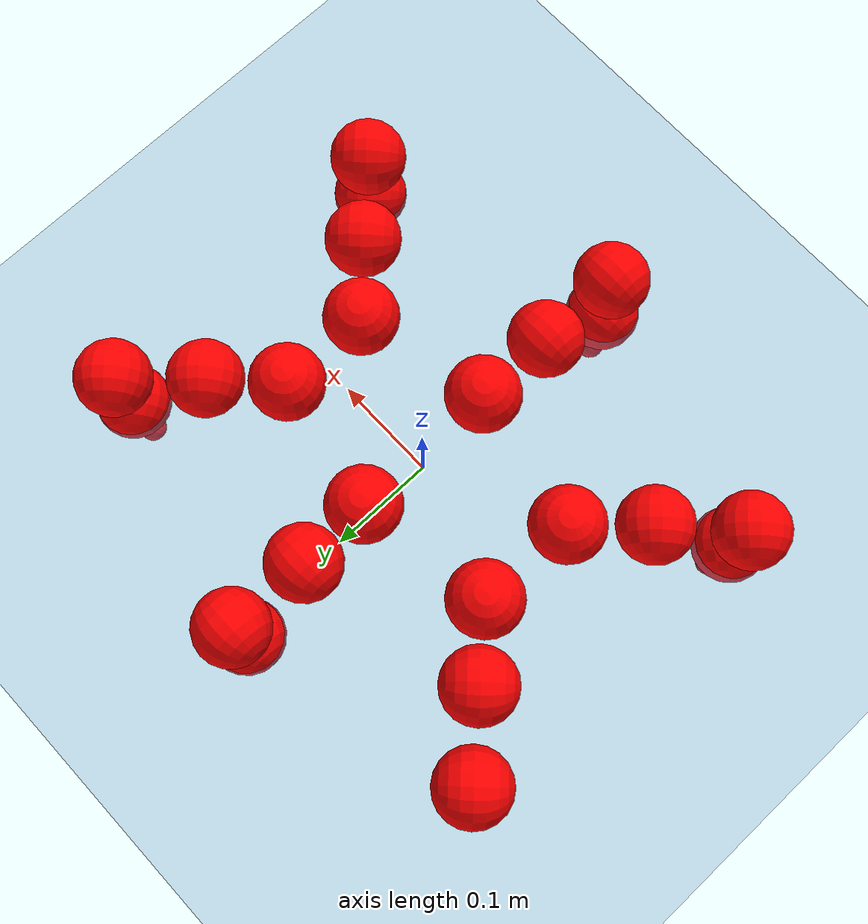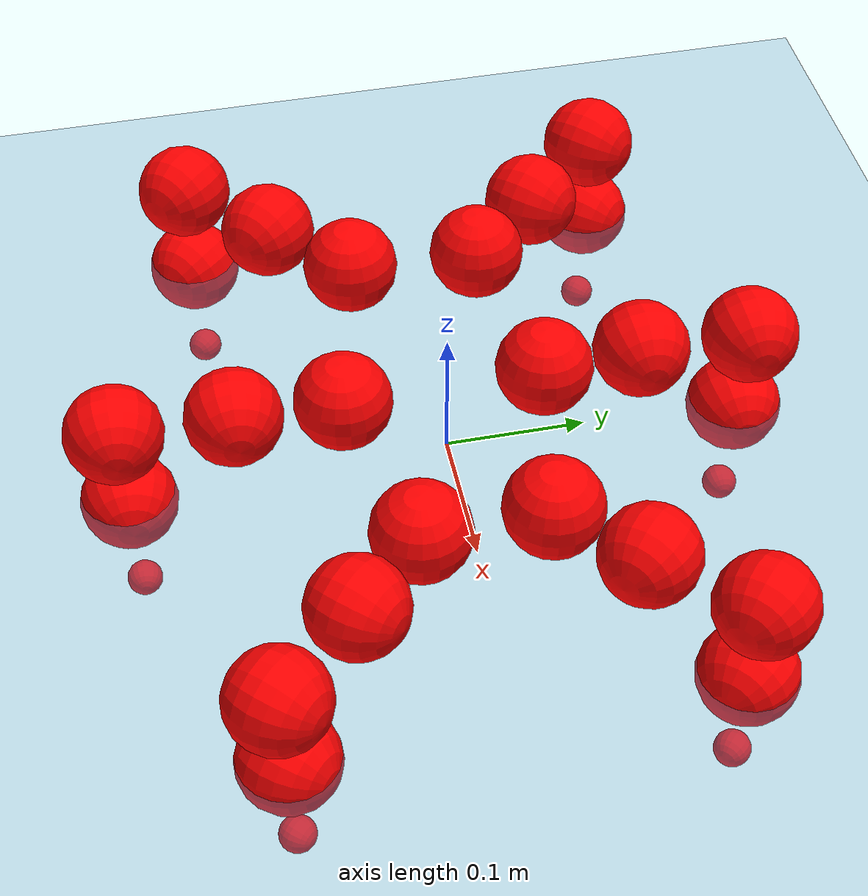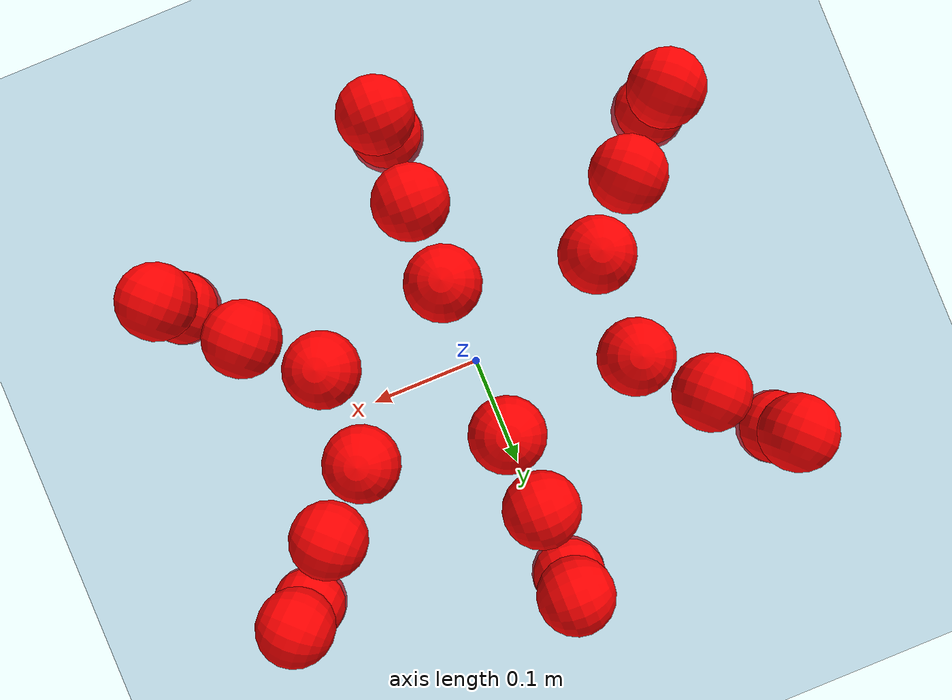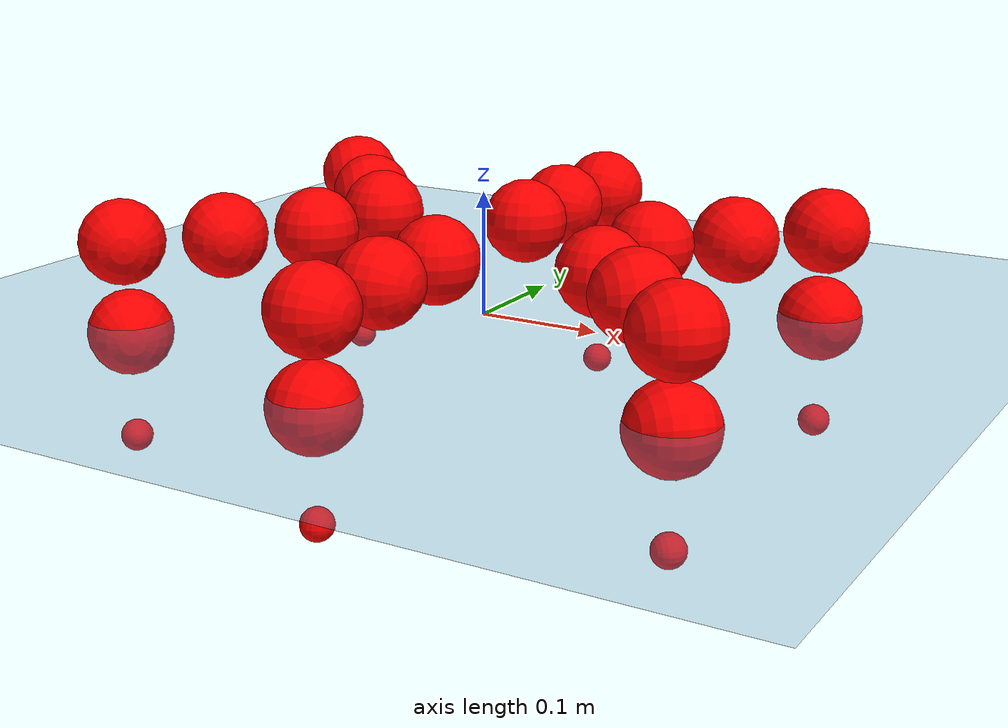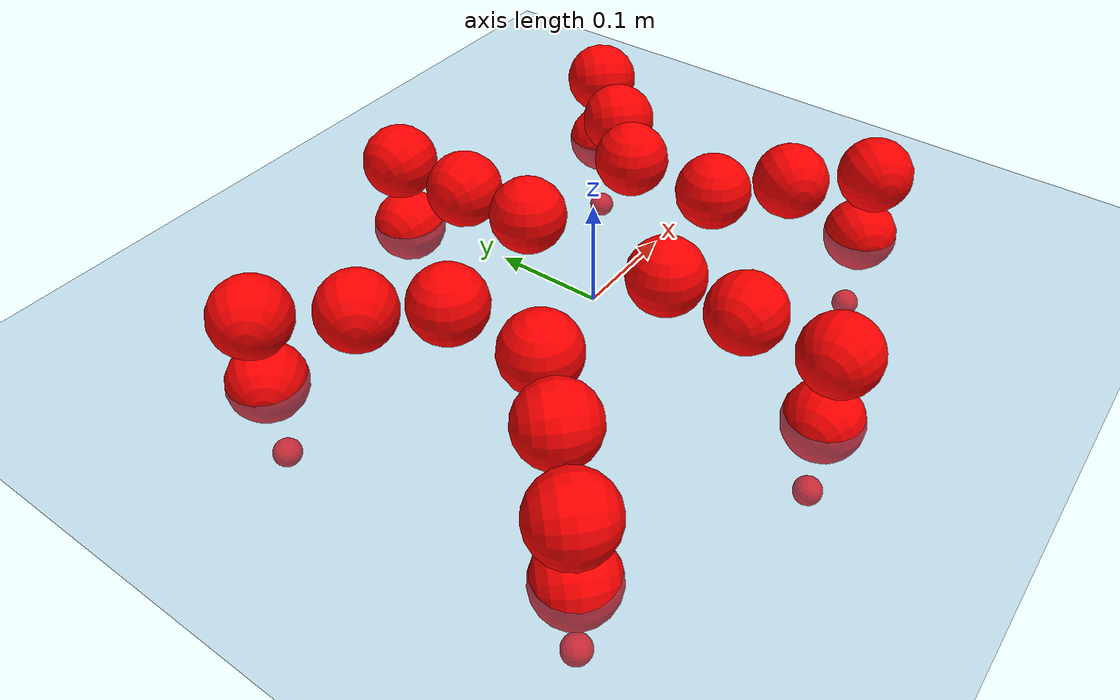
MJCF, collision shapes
<mujoco model="Golem">
  <compiler angle="radian" assetdir="assets" balanceinertia="true" inertiafromgeom="false"/>

  <option timestep="0.005" density="1.2" viscosity="2e-05"/>

  <size nkey="1"/>

  <visual>
    <quality shadowsize="8192"/>
    <map shadowclip="0.5"/>
  </visual>

  <default>
    <default class="/">
      <joint armature="0.01" damping="0.01" frictionloss="0.01"/>
      <geom contype="0" conaffinity="0" group="1" solref="-1000 -80"/>
      <site size="0.01 0.005 0.005" group="5"/>
      <general forcelimited="true" biastype="affine" gainprm="25" biasprm="0 -25 -0.5"/>
      <default class="visual">
        <geom type="mesh" group="2"/>
      </default>
      <default class="collision">
        <geom group="3"/>
      </default>
      <default class="foot">
        <geom size="0.01 0 0" condim="6" group="4" priority="1" solimp="0.015 1 0.01"/>
      </default>
      <default class="reward_collision_sphere">
        <geom group="5" rgba="1 0 0 1"/>
      </default>
    </default>
  </default>

  <asset>
    <texture type="skybox" colorspace="auto" name="//unnamed_texture_0" builtin="gradient" rgb1="0.95 0.95 0.95" rgb2="0.95 0.95 0.95" width="100" height="600"/>
    <texture type="2d" colorspace="auto" name="texplane" builtin="checker" rgb1="0.345 0.575 0.748" rgb2="0.345 0.575 0.748" markrgb="1 1 1" width="512" height="512"/>
    <material name="MatPlane" class="/" texture="texplane" texuniform="true" texrepeat="2 2" specular="0.9"/>
    <mesh name="body" class="/" file="body.stl" scale="0.001 0.001 0.001"/>
    <mesh name="coxa" class="/" file="coxa.stl" scale="0.001 0.001 0.001"/>
    <mesh name="femur" class="/" file="femur.stl" scale="0.001 0.001 0.001"/>
    <mesh name="tibia" class="/" file="tibia.stl" scale="0.001 0.001 0.001"/>
    <mesh name="tarsus" class="/" file="tarsus.stl" scale="0.001 0.001 0.001"/>
  </asset>

  <worldbody>
    <geom name="floor" class="/" size="100 100 0.125" type="plane" group="0" material="MatPlane"/>
    <light name="toplight_shadow" class="/" pos="0 0 5" dir="0.0990148 0.0990148 -0.990148" type="directional" ambient="0.04 0.04 0.04" diffuse="0.55 0.55 0.55" specular="0.12 0.12 0.12"/>
    <light name="toplight_fill" class="/" pos="0 0 5" dir="0.0990148 0.0990148 -0.990148" type="directional" castshadow="false" ambient="0.04 0.04 0.04" diffuse="0.3 0.3 0.3" specular="0.08 0.08 0.08"/>
    <body name="trunk" pos="-0.0010038 -8.7286e-05 -0.0026835" quat="1 0.00071058 0.000146361 -6.19116e-05">
      <inertial pos="0.000515286 0.00233504 -0.00512933" quat="0.999987 -0.00475983 -0.00162078 0.00105217" mass="2.3874" diaginertia="0.00365906 0.00221439 0.011383"/>
      <joint name="//unnamed_joint_0" type="free"/>
      <geom name="//unnamed_geom_1" class="/" pos="0 0 0.0652851" quat="1 0 0 0" type="mesh" rgba="0.9 0.9 0.9 1" mesh="body"/>
      <site name="imu" class="/" pos="0.0992144 -0.000275376 0.11593" size="0.00857022"/>
      <camera name="track" class="/" pos="0 -1.47671 0" quat="0.707107 0.707107 0 0" mode="trackcom"/>
      <camera name="ego_camera" class="/" pos="0.105642 0 0.102008" quat="-0.5 -0.5 0.5 0.5"/>
      <body name="coxa_RR" pos="-0.146849 -0.0616831 0.0654799" quat="0.383388 -0.000801969 0.000112649 -0.923587">
        <inertial pos="-0.00259113 -0.00213741 -0.000621152" quat="0.999903 0.00981018 -0.00944155 -0.00289718" mass="0.126994" diaginertia="0.00352164 0.00216075 0.0106686"/>
        <joint name="coxa_joint_RR" class="/" pos="0 0 0" axis="0.00726515 -0.00331226 -0.999968" range="-3.168 3.11873" armature="0.0085569" damping="0.015612" frictionloss="0.00976261"/>
        <geom name="//unnamed_geom_2" class="/" type="mesh" rgba="0.2 0.2 0.2 1" mesh="coxa"/>
        <geom name="//unnamed_geom_3" class="reward_collision_sphere" size="0.0342809" pos="-0.024379 0 0"/>
        <body name="femur_RR" pos="0.0490803 0.00195783 9.94824e-05" quat="0.500109 -0.499985 0.500268 0.499637">
          <inertial pos="0.000717136 -0.00106497 0.00266666" quat="1 0.000176463 4.65995e-05 0.000741976" mass="0.125858" diaginertia="0.00354024 0.00219021 0.0106688"/>
          <joint name="femur_joint_RR" class="/" pos="0 0 0" axis="0.00399948 -0.0127012 -0.999911" range="-3.14171 3.13103" armature="0.00795019" damping="0" frictionloss="0.00853155"/>
          <geom name="//unnamed_geom_4" class="/" type="mesh" rgba="0.9 0.9 0.9 1" mesh="femur"/>
          <geom name="//unnamed_geom_5" class="reward_collision_sphere" size="0.0342809"/>
          <body name="tibia_RR" pos="0.000941758 -0.0805775 -0.0017939" quat="-1.98528e-06 1 -1.14537e-06 -2.05872e-06">
            <inertial pos="-0.00144947 0.00281918 -0.00269605" quat="0.999904 0.00547611 -0.0102933 -0.00754836" mass="0.124362" diaginertia="0.00335047 0.00215984 0.0106912"/>
            <joint name="tibia_joint_RR" class="/" pos="0 0 0" axis="-0.00383771 0.000230772 0.999993" range="-3.14114 3.0872" armature="0.00843389" damping="0.0125724" frictionloss="0.00811841"/>
            <geom name="//unnamed_geom_6" class="/" type="mesh" rgba="0.2 0.2 0.2 1" mesh="tibia"/>
            <geom name="//unnamed_geom_7" class="reward_collision_sphere" size="0.0342809"/>
            <body name="tarsus_RR" pos="0.0733265 -0.00259291 -0.00211707" quat="0.999999 0.000654468 0.00104119 -0.000656051">
              <inertial pos="0.0491423 -0.00221984 0.000924009" quat="0.500651 0.497182 0.503042 0.499106" mass="0.124842" diaginertia="0.00355701 0.00232961 0.0113788"/>
              <joint name="tarsus_joint_RR" class="/" pos="0 0 0" axis="-0.000517593 -0.00172982 0.999998" range="-3.14291 3.15656" armature="0.00849322" damping="0" frictionloss="0.0090234"/>
              <geom name="//unnamed_geom_8" class="/" type="mesh" rgba="0.9 0.9 0.9 1" mesh="tarsus"/>
              <geom name="foot_1" class="foot" size="0.00878159" pos="0.0910149 0 0" quat="0 -0.707107 0 0.707107"/>
              <geom name="//unnamed_geom_10" class="reward_collision_sphere" size="0.0342809"/>
              <geom name="//unnamed_geom_11" class="reward_collision_sphere" size="0.0128553" pos="0.0873581 0 0"/>
              <site name="foot_1" class="foot" pos="0.0910149 0 0" quat="0 -0.707107 0 0.707107" size="0.00857022"/>
            </body>
          </body>
        </body>
      </body>
      <body name="coxa_RM" pos="0.0019043 -0.0965567 0.0635346" quat="0.7069 0.000412653 0.000650082 -0.707313">
        <inertial pos="1.80258e-05 -0.00215913 -0.00204358" quat="1 0.000308717 -0.000269315 3.43617e-05" mass="0.121026" diaginertia="0.00331094 0.00204796 0.0107825"/>
        <joint name="coxa_joint_RM" class="/" pos="0 0 0" axis="0.00230702 0.0021916 -0.999995" stiffness="0.00430292" range="-3.14117 3.16027" armature="0.00804185" damping="0.0180882" frictionloss="0.00954587"/>
        <geom name="//unnamed_geom_12" class="/" type="mesh" rgba="0.2 0.2 0.2 1" mesh="coxa"/>
        <geom name="//unnamed_geom_13" class="reward_collision_sphere" size="0.0342809" pos="-0.024379 0 0"/>
        <body name="femur_RM" pos="0.050323 -0.000647373 -0.000356356" quat="0.499802 -0.499847 0.499523 0.500828">
          <inertial pos="0.00071583 -0.00238651 0.000118629" quat="0.999915 0.00572266 0.0100924 -0.00598461" mass="0.125758" diaginertia="0.00366845 0.00215958 0.0110662"/>
          <joint name="femur_joint_RM" class="/" pos="0 0 0" axis="0.00206108 -0.00113199 -0.999997" range="-3.19565 3.19497" armature="0.00966002" damping="0.0270063" frictionloss="0.00858717"/>
          <geom name="//unnamed_geom_14" class="/" type="mesh" rgba="0.9 0.9 0.9 1" mesh="femur"/>
          <geom name="//unnamed_geom_15" class="reward_collision_sphere" size="0.0342809"/>
          <body name="tibia_RM" pos="-0.00022133 -0.0804874 -0.000504885" quat="-1.54338e-06 1 -7.0717e-05 -7.48624e-05">
            <inertial pos="-0.000293172 -8.31301e-05 -0.00265592" quat="0.999904 -0.000219024 0.00728467 0.0117639" mass="0.117358" diaginertia="0.00344939 0.00211576 0.0110265"/>
            <joint name="tibia_joint_RM" class="/" pos="0 0 0" axis="0.00457803 -0.000647938 0.999989" stiffness="0.00861875" range="-3.19541 3.08368" armature="0.00732125" damping="0" frictionloss="0.00841441"/>
            <geom name="//unnamed_geom_16" class="/" type="mesh" rgba="0.2 0.2 0.2 1" mesh="tibia"/>
            <geom name="//unnamed_geom_17" class="reward_collision_sphere" size="0.0342809"/>
            <body name="tarsus_RM" pos="0.0712765 -0.00194239 0.00294964" quat="1 -0.000553308 -0.000150757 -0.000134902">
              <inertial pos="0.0477044 0.000663134 -0.000846874" quat="0.501708 0.499638 0.489986 0.508493" mass="0.125624" diaginertia="0.00357397 0.00219253 0.0111282"/>
              <joint name="tarsus_joint_RM" class="/" pos="0 0 0" axis="-0.00514135 0.000232422 0.999987" range="-3.15275 3.18115" armature="0.0086174" damping="0" frictionloss="0.00897667"/>
              <geom name="//unnamed_geom_18" class="/" type="mesh" rgba="0.9 0.9 0.9 1" mesh="tarsus"/>
              <geom name="foot_2" class="foot" size="0.00769656" pos="0.0910149 0 0" quat="0 -0.707107 0 0.707107"/>
              <geom name="//unnamed_geom_20" class="reward_collision_sphere" size="0.0342809"/>
              <geom name="//unnamed_geom_21" class="reward_collision_sphere" size="0.0128553" pos="0.0873581 0 0"/>
              <site name="foot_2" class="foot" pos="0.0910149 0 0" quat="0 -0.707107 0 0.707107" size="0.00857022"/>
            </body>
          </body>
        </body>
      </body>
      <body name="coxa_RF" pos="0.143101 -0.0601738 0.0644771" quat="0.923572 0.00107192 -0.000203333 -0.383423">
        <inertial pos="0.00270393 -0.00275026 0.00125831" quat="0.999994 0.00184351 -0.00277798 -0.00100333" mass="0.127652" diaginertia="0.00366911 0.00221662 0.0110015"/>
        <joint name="coxa_joint_RF" class="/" pos="0 0 0" axis="-0.00997198 0.00374359 -0.999943" range="-3.13642 3.16051" armature="0.00841427" damping="0" frictionloss="0.00821593"/>
        <geom name="//unnamed_geom_22" class="/" type="mesh" rgba="0.2 0.2 0.2 1" mesh="coxa"/>
        <geom name="//unnamed_geom_23" class="reward_collision_sphere" size="0.0342809" pos="-0.024379 0 0"/>
        <body name="femur_RF" pos="0.0482102 0.00178081 0.0020091" quat="0.500642 -0.500191 0.499139 0.500027">
          <inertial pos="-0.000854762 0.000986101 -0.00114138" quat="0.999949 -0.00376022 -0.00932905 0.000996111" mass="0.123531" diaginertia="0.00348546 0.00212925 0.0109256"/>
          <joint name="femur_joint_RF" class="/" pos="0 0 0" axis="6.20081e-05 -0.000575139 -1" range="-3.10749 3.1762" armature="0.00915597" damping="0.00826149" frictionloss="0.00849745"/>
          <geom name="//unnamed_geom_24" class="/" type="mesh" rgba="0.9 0.9 0.9 1" mesh="femur"/>
          <geom name="//unnamed_geom_25" class="reward_collision_sphere" size="0.0342809"/>
          <body name="tibia_RF" pos="0.00173841 -0.0804522 -0.000813843" quat="0.000139241 1 5.0194e-05 0.000500832">
            <inertial pos="0.00132325 -0.00264103 0.000284373" quat="0.999987 0.00352379 -0.000533388 -0.00369716" mass="0.124156" diaginertia="0.00344333 0.00213097 0.0110944"/>
            <joint name="tibia_joint_RF" class="/" pos="0 0 0" axis="-0.00123877 0.000723073 0.999999" stiffness="0.00729975" range="-3.15041 3.08212" armature="0.00867245" damping="0.00085272" frictionloss="0.00852204"/>
            <geom name="//unnamed_geom_26" class="/" type="mesh" rgba="0.2 0.2 0.2 1" mesh="tibia"/>
            <geom name="//unnamed_geom_27" class="reward_collision_sphere" size="0.0342809"/>
            <body name="tarsus_RF" pos="0.0683887 -0.00300617 -0.000273932" quat="0.999999 -0.000852668 0.000897866 -0.000133188">
              <inertial pos="0.0484258 -0.000230159 -0.000667457" quat="0.499653 0.499676 0.500285 0.500386" mass="0.126792" diaginertia="0.00357137 0.00225922 0.0110025"/>
              <joint name="tarsus_joint_RF" class="/" pos="0 0 0" axis="-0.000796537 0.00248905 0.999997" range="-3.14942 3.15481" armature="0.00818186" damping="0" frictionloss="0.00902889"/>
              <geom name="//unnamed_geom_28" class="/" type="mesh" rgba="0.9 0.9 0.9 1" mesh="tarsus"/>
              <geom name="foot_3" class="foot" size="0.00847082" pos="0.0910149 0 0" quat="0 -0.707107 0 0.707107"/>
              <geom name="//unnamed_geom_30" class="reward_collision_sphere" size="0.0342809"/>
              <geom name="//unnamed_geom_31" class="reward_collision_sphere" size="0.0128553" pos="0.0873581 0 0"/>
              <site name="foot_3" class="foot" pos="0.0910149 0 0" quat="0 -0.707107 0 0.707107" size="0.00857022"/>
            </body>
          </body>
        </body>
      </body>
      <body name="coxa_LR" pos="-0.144796 0.0662969 0.0634655" quat="0.382668 -5.37192e-05 -3.99658e-05 0.923886">
        <inertial pos="0.000372169 -0.000859689 -0.00230225" quat="0.999918 -0.00424941 0.0120983 0.000429655" mass="0.120688" diaginertia="0.00343649 0.00220032 0.0108497"/>
        <joint name="coxa_joint_LR" class="/" pos="0 0 0" axis="0.00950496 -0.00332405 -0.999949" stiffness="0.0103867" range="-3.14765 3.16057" armature="0.00887744" damping="0.0146222" frictionloss="0.00973188"/>
        <geom name="//unnamed_geom_32" class="/" type="mesh" rgba="0.2 0.2 0.2 1" mesh="coxa"/>
        <geom name="//unnamed_geom_33" class="reward_collision_sphere" size="0.0342809" pos="-0.024379 0 0"/>
        <body name="femur_LR" pos="0.0468689 -0.00340643 0.000731425" quat="0.499798 -0.499317 0.499969 0.500914">
          <inertial pos="0.000384813 -0.0013189 -0.00263732" quat="0.999963 -0.00571545 -0.00605299 -0.00197832" mass="0.124302" diaginertia="0.00342157 0.00211902 0.0105974"/>
          <joint name="femur_joint_LR" class="/" pos="0 0 0" axis="0.0113228 -0.00329806 0.99993" range="-3.13909 3.14218" armature="0.00952618" damping="0.0144726" frictionloss="0.00902611"/>
          <geom name="//unnamed_geom_34" class="/" type="mesh" rgba="0.9 0.9 0.9 1" mesh="femur"/>
          <geom name="//unnamed_geom_35" class="reward_collision_sphere" size="0.0342809"/>
          <body name="tibia_LR" pos="-0.00258172 -0.0805827 -0.00322568" quat="-0.000274416 1 -5.48767e-05 9.17493e-05">
            <inertial pos="0.000792382 0.00286363 0.000586698" quat="0.999994 -0.000498211 -0.00316774 0.00143209" mass="0.129301" diaginertia="0.00351087 0.00223504 0.011721"/>
            <joint name="tibia_joint_LR" class="/" pos="0 0 0" axis="-0.00843184 -0.00590843 -0.999947" stiffness="0.00186111" range="-3.08547 3.09631" armature="0.00948978" damping="0" frictionloss="0.00962861"/>
            <geom name="//unnamed_geom_36" class="/" type="mesh" rgba="0.2 0.2 0.2 1" mesh="tibia"/>
            <geom name="//unnamed_geom_37" class="reward_collision_sphere" size="0.0342809"/>
            <body name="tarsus_LR" pos="0.0709285 0.000656554 -0.000288976" quat="1 0.00016174 0.000177947 6.66207e-05">
              <inertial pos="0.051407 0.00142229 -0.00189018" quat="0.50028 0.499775 0.499842 0.500103" mass="0.124495" diaginertia="0.00364091 0.00221184 0.0108582"/>
              <joint name="tarsus_joint_LR" class="/" pos="0 0 0" axis="0.00402094 -0.00414867 -0.999983" range="-3.0966 3.10029" armature="0.0073865" damping="0.0183837" frictionloss="0.00862948"/>
              <geom name="//unnamed_geom_38" class="/" type="mesh" rgba="0.9 0.9 0.9 1" mesh="tarsus"/>
              <geom name="foot_4" class="foot" size="0.00860433" pos="0.0910149 0 0" quat="0.707107 0 -0.707107 0"/>
              <geom name="//unnamed_geom_40" class="reward_collision_sphere" size="0.0342809"/>
              <geom name="//unnamed_geom_41" class="reward_collision_sphere" size="0.0128553" pos="0.0873581 0 0"/>
              <site name="foot_4" class="foot" pos="0.0910149 0 0" quat="0.707107 0 -0.707107 0" size="0.00857022"/>
            </body>
          </body>
        </body>
      </body>
      <body name="coxa_LM" pos="-1.56771e-05 0.0933058 0.065522" quat="0.707171 4.9819e-05 0.000108182 0.707042">
        <inertial pos="0.000170787 -0.00273806 0.00225086" quat="0.999972 -0.00332839 0.00574738 -0.00343393" mass="0.130505" diaginertia="0.00355562 0.00221662 0.0111407"/>
        <joint name="coxa_joint_LM" class="/" pos="0 0 0" axis="0.00675278 0.0117242 -0.999908" range="-3.13272 3.13092" armature="0.00750357" damping="0.0160664" frictionloss="0.0086643"/>
        <geom name="//unnamed_geom_42" class="/" type="mesh" rgba="0.2 0.2 0.2 1" mesh="coxa"/>
        <geom name="//unnamed_geom_43" class="reward_collision_sphere" size="0.0342809" pos="-0.024379 0 0"/>
        <body name="femur_LM" pos="0.0456209 0.00285709 0.0005459" quat="0.499855 -0.499915 0.500044 0.500185">
          <inertial pos="-0.00245081 0.00197255 -0.0023927" quat="0.999999 0.000872292 -0.00105389 0.000885065" mass="0.123355" diaginertia="0.00342305 0.00217274 0.0106045"/>
          <joint name="femur_joint_LM" class="/" pos="0 0 0" axis="-0.00716502 0.0137967 0.999879" stiffness="0.00982865" range="-3.14329 3.14478" armature="0.00896997" damping="0" frictionloss="0.00974187"/>
          <geom name="//unnamed_geom_44" class="/" type="mesh" rgba="0.9 0.9 0.9 1" mesh="femur"/>
          <geom name="//unnamed_geom_45" class="reward_collision_sphere" size="0.0342809"/>
          <body name="tibia_LM" pos="0.00141515 -0.0792033 -0.000678874" quat="-6.17499e-06 1 6.62612e-05 -2.92661e-05">
            <inertial pos="-0.000894435 -0.000216911 0.00268788" quat="0.999906 0.00388038 0.00279484 0.0128228" mass="0.123551" diaginertia="0.00355961 0.00223728 0.0108015"/>
            <joint name="tibia_joint_LM" class="/" pos="0 0 0" axis="0.00178439 0.000759258 -0.999998" stiffness="0.00934783" range="-3.16025 3.19433" armature="0.00806755" damping="0" frictionloss="0.00908186"/>
            <geom name="//unnamed_geom_46" class="/" type="mesh" rgba="0.2 0.2 0.2 1" mesh="tibia"/>
            <geom name="//unnamed_geom_47" class="reward_collision_sphere" size="0.0342809"/>
            <body name="tarsus_LM" pos="0.0709656 -0.00356038 -0.00171262" quat="1 -1.14375e-05 -3.55861e-06 -5.17191e-06">
              <inertial pos="0.0514306 0.00043484 -9.96063e-05" quat="0.499948 0.500037 0.499911 0.500105" mass="0.12557" diaginertia="0.00357457 0.00220874 0.0114636"/>
              <joint name="tarsus_joint_LM" class="/" pos="0 0 0" axis="0.000617332 0.0022819 -0.999997" range="-3.13214 3.13469" armature="0.00881766" damping="0" frictionloss="0.00871215"/>
              <geom name="//unnamed_geom_48" class="/" type="mesh" rgba="0.9 0.9 0.9 1" mesh="tarsus"/>
              <geom name="foot_5" class="foot" size="0.00851231" pos="0.0910149 0 0" quat="0.707107 0 -0.707107 0"/>
              <geom name="//unnamed_geom_50" class="reward_collision_sphere" size="0.0342809"/>
              <geom name="//unnamed_geom_51" class="reward_collision_sphere" size="0.0128553" pos="0.0873581 0 0"/>
              <site name="foot_5" class="foot" pos="0.0910149 0 0" quat="0.707107 0 -0.707107 0" size="0.00857022"/>
            </body>
          </body>
        </body>
      </body>
      <body name="coxa_LF" pos="0.141951 0.0615537 0.065903" quat="0.923844 0.000400685 -0.000215753 0.38277">
        <inertial pos="0.00287633 0.000632468 0.00056368" quat="0.999911 -0.00343952 0.0120305 -0.00458684" mass="0.126101" diaginertia="0.00364481 0.00218171 0.0110453"/>
        <joint name="coxa_joint_LF" class="/" pos="0 0 0" axis="-0.000555045 -0.00065252 -1" range="-3.16131 3.08305" armature="0.00790463" damping="0.0115766" frictionloss="0.00883111"/>
        <geom name="//unnamed_geom_52" class="/" type="mesh" rgba="0.2 0.2 0.2 1" mesh="coxa"/>
        <geom name="//unnamed_geom_53" class="reward_collision_sphere" size="0.0342809" pos="-0.024379 0 0"/>
        <body name="femur_LF" pos="0.0462179 -0.000800325 0.00014367" quat="0.500042 -0.50003 0.500016 0.499913">
          <inertial pos="-0.00279038 0.0024676 -0.000597683" quat="0.99999 -0.00429151 -0.000858777 -0.00125432" mass="0.125916" diaginertia="0.00342395 0.00218135 0.0110944"/>
          <joint name="femur_joint_LF" class="/" pos="0 0 0" axis="-0.0146399 0.000250353 0.999893" range="-3.19491 3.13168" armature="0.00848259" damping="0" frictionloss="0.00862261"/>
          <geom name="//unnamed_geom_54" class="/" type="mesh" rgba="0.9 0.9 0.9 1" mesh="femur"/>
          <geom name="//unnamed_geom_55" class="reward_collision_sphere" size="0.0342809"/>
          <body name="tibia_LF" pos="-0.00189138 -0.0789016 0.00285372" quat="-0.000207808 0.999999 -0.000889452 0.000882331">
            <inertial pos="-0.00275735 -9.67582e-05 0.00089926" quat="0.999942 0.00879507 0.004709 0.00393919" mass="0.129885" diaginertia="0.00343536 0.00216668 0.0110032"/>
            <joint name="tibia_joint_LF" class="/" pos="0 0 0" axis="0.00447672 -0.00102719 -0.999989" stiffness="0.00366266" range="-3.13529 3.16265" armature="0.00860066" damping="0.00671714" frictionloss="0.00901481"/>
            <geom name="//unnamed_geom_56" class="/" type="mesh" rgba="0.2 0.2 0.2 1" mesh="tibia"/>
            <geom name="//unnamed_geom_57" class="reward_collision_sphere" size="0.0342809"/>
            <body name="tarsus_LF" pos="0.0718792 -0.0022774 0.00146358" quat="1 -0.000254372 -0.000400494 -0.000127059">
              <inertial pos="0.0470847 -0.000496367 -0.00270652" quat="0.500604 0.499631 0.49785 0.501906" mass="0.117653" diaginertia="0.0034078 0.00212813 0.0107416"/>
              <joint name="tarsus_joint_LF" class="/" pos="0 0 0" axis="0.00267772 -0.00679314 -0.999973" range="-3.13146 3.1729" armature="0.00796268" damping="0.0228453" frictionloss="0.00867716"/>
              <geom name="//unnamed_geom_58" class="/" type="mesh" rgba="0.9 0.9 0.9 1" mesh="tarsus"/>
              <geom name="foot_6" class="foot" size="0.009372" pos="0.0910149 0 0" quat="0.707107 0 -0.707107 0"/>
              <geom name="//unnamed_geom_60" class="reward_collision_sphere" size="0.0342809"/>
              <geom name="//unnamed_geom_61" class="reward_collision_sphere" size="0.0128553" pos="0.0873581 0 0"/>
              <site name="foot_6" class="foot" pos="0.0910149 0 0" quat="0.707107 0 -0.707107 0" size="0.00857022"/>
            </body>
          </body>
        </body>
      </body>
    </body>
  </worldbody>

  <contact>
    <pair class="/" geom1="floor" geom2="foot_1" name="//unnamed_contact_0"/>
    <pair class="/" geom1="floor" geom2="foot_2" name="//unnamed_contact_1"/>
    <pair class="/" geom1="floor" geom2="foot_3" name="//unnamed_contact_2"/>
    <pair class="/" geom1="floor" geom2="foot_4" name="//unnamed_contact_3"/>
    <pair class="/" geom1="floor" geom2="foot_5" name="//unnamed_contact_4"/>
    <pair class="/" geom1="floor" geom2="foot_6" name="//unnamed_contact_5"/>
  </contact>

  <actuator>
    <general name="coxa_joint_RR" class="/" joint="coxa_joint_RR" forcerange="-6.37428 6.37428" gainprm="20.7084" biasprm="0 -20.7084 -0.463101"/>
    <general name="femur_joint_RR" class="/" joint="femur_joint_RR" forcerange="-6.7927 6.7927" gainprm="20.7084" biasprm="0 -20.7084 -0.463101"/>
    <general name="tibia_joint_RR" class="/" joint="tibia_joint_RR" forcerange="-5.60465 5.60465" gainprm="20.7084" biasprm="0 -20.7084 -0.463101"/>
    <general name="tarsus_joint_RR" class="/" joint="tarsus_joint_RR" forcerange="-6.4457 6.4457" gainprm="20.7084" biasprm="0 -20.7084 -0.463101"/>
    <general name="coxa_joint_RM" class="/" joint="coxa_joint_RM" forcerange="-6.7498 6.7498" gainprm="20.7084" biasprm="0 -20.7084 -0.463101"/>
    <general name="femur_joint_RM" class="/" joint="femur_joint_RM" forcerange="-6.31646 6.31646" gainprm="20.7084" biasprm="0 -20.7084 -0.463101"/>
    <general name="tibia_joint_RM" class="/" joint="tibia_joint_RM" forcerange="-6.48026 6.48026" gainprm="20.7084" biasprm="0 -20.7084 -0.463101"/>
    <general name="tarsus_joint_RM" class="/" joint="tarsus_joint_RM" forcerange="-5.60448 5.60448" gainprm="20.7084" biasprm="0 -20.7084 -0.463101"/>
    <general name="coxa_joint_RF" class="/" joint="coxa_joint_RF" forcerange="-6.90539 6.90539" gainprm="20.7084" biasprm="0 -20.7084 -0.463101"/>
    <general name="femur_joint_RF" class="/" joint="femur_joint_RF" forcerange="-6.24924 6.24924" gainprm="20.7084" biasprm="0 -20.7084 -0.463101"/>
    <general name="tibia_joint_RF" class="/" joint="tibia_joint_RF" forcerange="-6.14315 6.14315" gainprm="20.7084" biasprm="0 -20.7084 -0.463101"/>
    <general name="tarsus_joint_RF" class="/" joint="tarsus_joint_RF" forcerange="-6.28613 6.28613" gainprm="20.7084" biasprm="0 -20.7084 -0.463101"/>
    <general name="coxa_joint_LR" class="/" joint="coxa_joint_LR" forcerange="-6.88789 6.88789" gainprm="20.7084" biasprm="0 -20.7084 -0.463101"/>
    <general name="femur_joint_LR" class="/" joint="femur_joint_LR" forcerange="-6.25197 6.25197" gainprm="20.7084" biasprm="0 -20.7084 -0.463101"/>
    <general name="tibia_joint_LR" class="/" joint="tibia_joint_LR" forcerange="-6.87825 6.87825" gainprm="20.7084" biasprm="0 -20.7084 -0.463101"/>
    <general name="tarsus_joint_LR" class="/" joint="tarsus_joint_LR" forcerange="-6.86007 6.86007" gainprm="20.7084" biasprm="0 -20.7084 -0.463101"/>
    <general name="coxa_joint_LM" class="/" joint="coxa_joint_LM" forcerange="-5.60281 5.60281" gainprm="20.7084" biasprm="0 -20.7084 -0.463101"/>
    <general name="femur_joint_LM" class="/" joint="femur_joint_LM" forcerange="-6.27079 6.27079" gainprm="20.7084" biasprm="0 -20.7084 -0.463101"/>
    <general name="tibia_joint_LM" class="/" joint="tibia_joint_LM" forcerange="-6.89903 6.89903" gainprm="20.7084" biasprm="0 -20.7084 -0.463101"/>
    <general name="tarsus_joint_LM" class="/" joint="tarsus_joint_LM" forcerange="-6.77903 6.77903" gainprm="20.7084" biasprm="0 -20.7084 -0.463101"/>
    <general name="coxa_joint_LF" class="/" joint="coxa_joint_LF" forcerange="-5.6463 5.6463" gainprm="20.7084" biasprm="0 -20.7084 -0.463101"/>
    <general name="femur_joint_LF" class="/" joint="femur_joint_LF" forcerange="-5.6627 5.6627" gainprm="20.7084" biasprm="0 -20.7084 -0.463101"/>
    <general name="tibia_joint_LF" class="/" joint="tibia_joint_LF" forcerange="-6.21192 6.21192" gainprm="20.7084" biasprm="0 -20.7084 -0.463101"/>
    <general name="tarsus_joint_LF" class="/" joint="tarsus_joint_LF" forcerange="-5.92105 5.92105" gainprm="20.7084" biasprm="0 -20.7084 -0.463101"/>
  </actuator>

  <sensor>
    <gyro site="imu" name="imu_angular_velocity"/>
    <velocimeter site="imu" name="imu_linear_velocity"/>
    <framelinvel objtype="site" objname="foot_1" name="foot_1_global_linear_velocity"/>
    <framelinvel objtype="site" objname="foot_2" name="foot_2_global_linear_velocity"/>
    <framelinvel objtype="site" objname="foot_3" name="foot_3_global_linear_velocity"/>
    <framelinvel objtype="site" objname="foot_4" name="foot_4_global_linear_velocity"/>
    <framelinvel objtype="site" objname="foot_5" name="foot_5_global_linear_velocity"/>
    <framelinvel objtype="site" objname="foot_6" name="foot_6_global_linear_velocity"/>
  </sensor>

  <keyframe>
    <key name="home" qpos="0 0 0.1457 1 0 0 0 0 0 0 0 0 0 0 0 0 0 0 0 0 0 0 0 0 0 0 0 0 0 0 0"/>
  </keyframe>
</mujoco>
